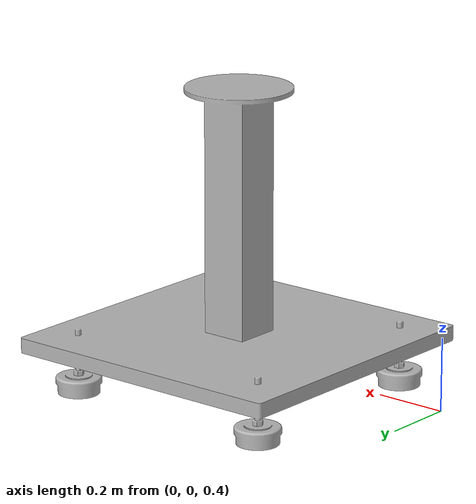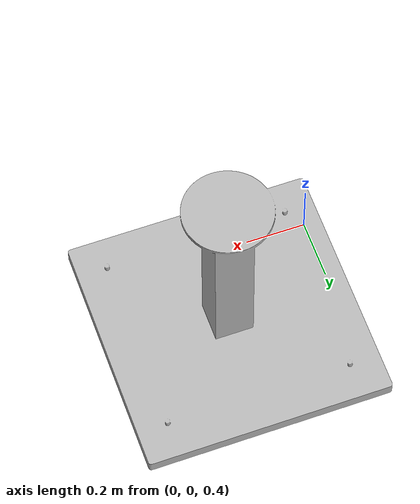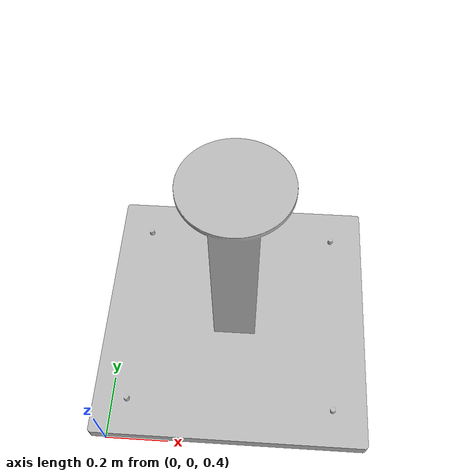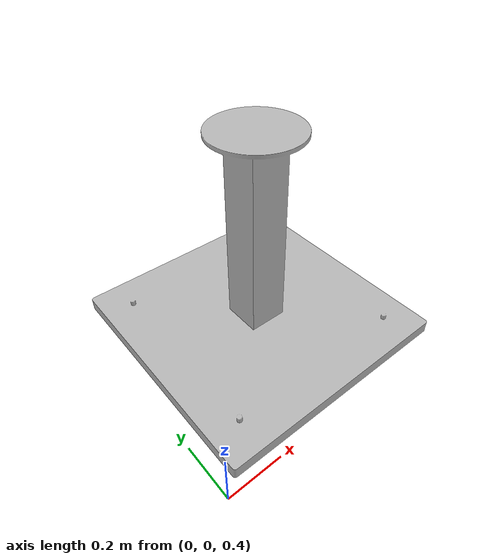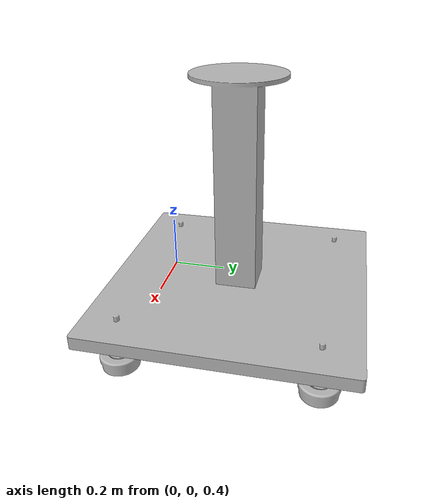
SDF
<?xml version="1.0" ?>
<sdf version="1.5">
  <model name="UR10Base">
    <static>true</static>
    <link name="link">
      <pose>0 0 0 0 0 0</pose>

        <visual name="visual">
          <geometry>
            <mesh>
              <scale>0.001 0.001 0.001</scale>
              <uri>model://UR10Base/meshes/base.obj</uri>
            </mesh>
          </geometry>
        </visual>

        <collision name="collision">
          <geometry>
            <mesh>
              <scale>0.001 0.001 0.001</scale>
              <uri>model://UR10Base/meshes/base.obj</uri>
            </mesh>
          </geometry>
        </collision>

    </link>
  </model>
</sdf>
